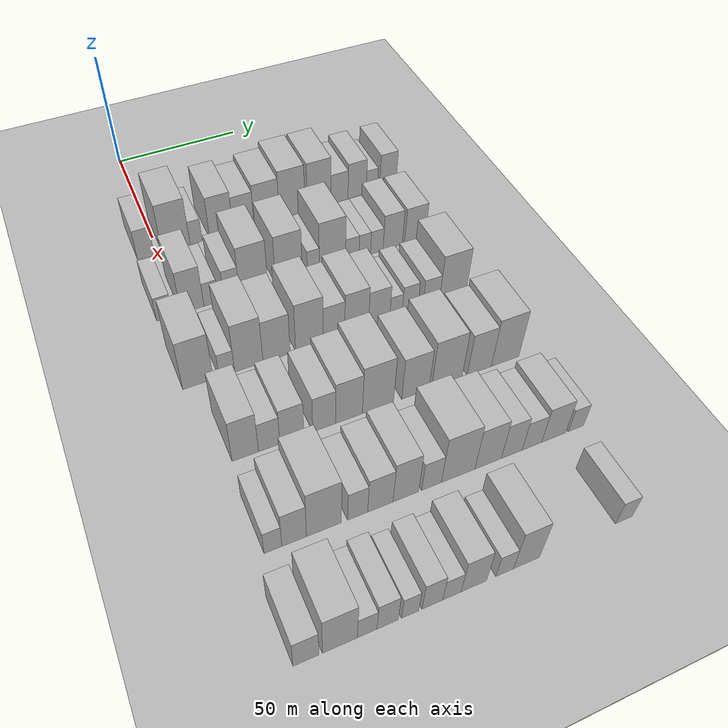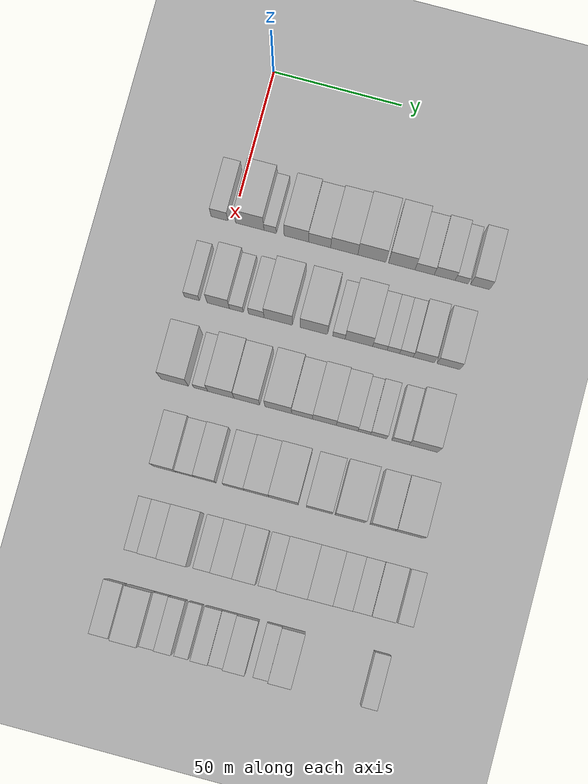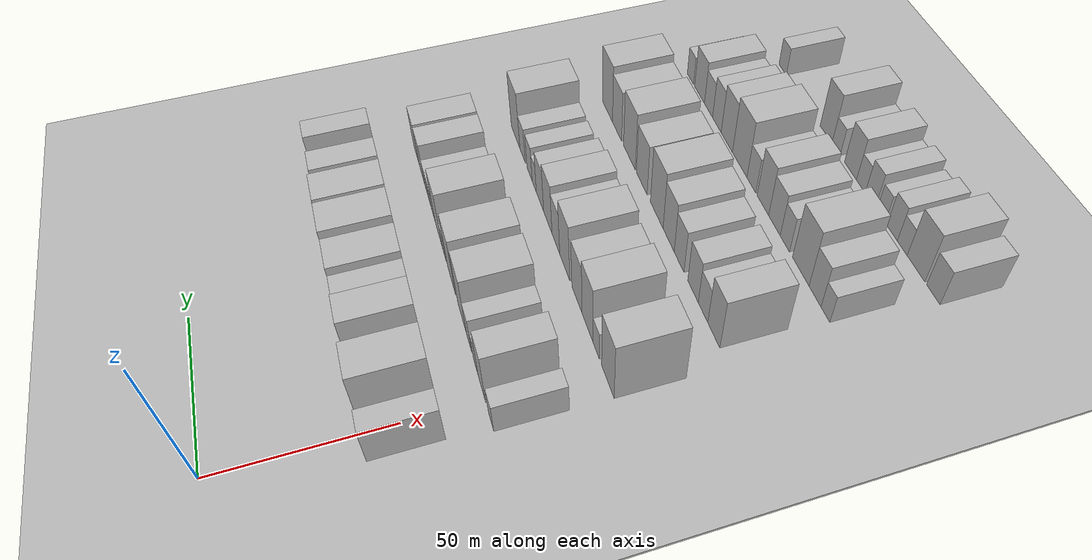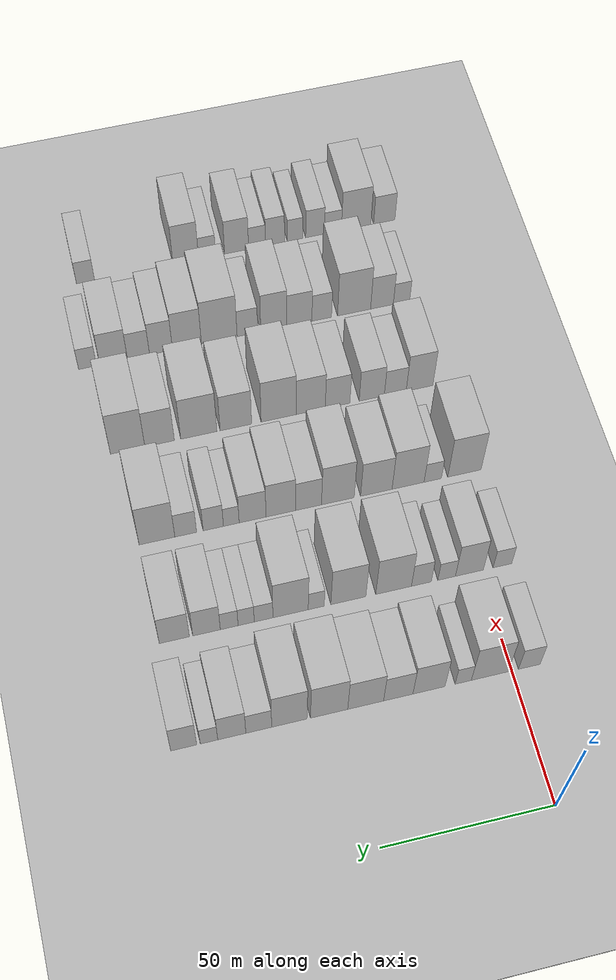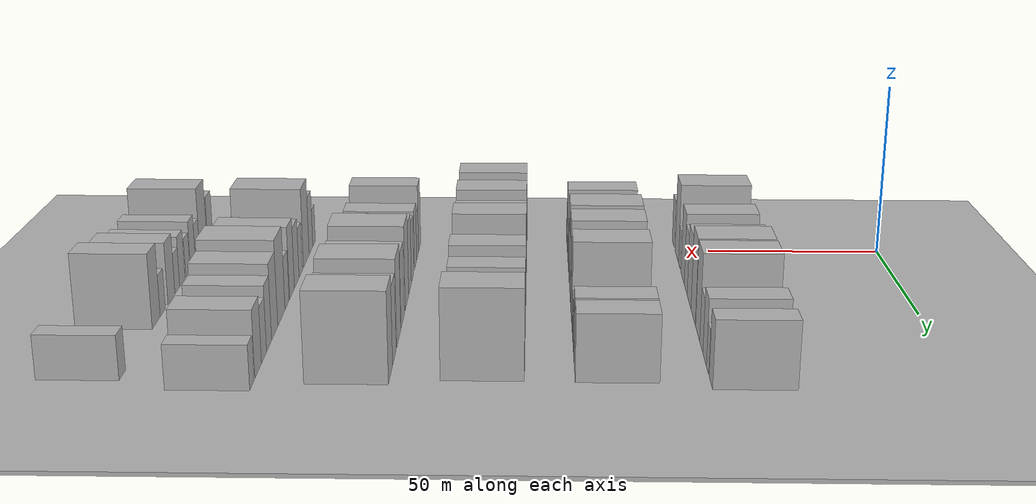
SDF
<sdf version="1.6">
 <world name="default">
  <include><name>ground_plane_1</name><uri>model://HANNAS_ground_plane</uri></include>
  <include>
   <name>ground_plane_2</name>
   <uri>model://HANNAS_ground_plane</uri>
   <pose>100 0 0  0 0 0</pose>
  </include>
  <model name="building_56">
   <static>1</static>
   <pose>50.0000 -4.9942 0 0.000000 0.000000 0.000000</pose>
   <link name="link">
    <pose>0 0 7.50 0 0 0</pose>
    <collision name="collision"><geometry><box><size>20.0000 6.4976 15.0000</size></box></geometry></collision>
    <visual name="visual">
     <cast_shadows>0</cast_shadows>
     <geometry><box><size>20.0000 6.4976 15.0000</size></box></geometry>
     <material>
      <script>
       <uri>model://HANNAS_wall/materials/scripts</uri>
       <uri>model://HANNAS_wall/materials/textures</uri>
       <name>vrc/HANNAS_wall</name>
      </script>
     </material>
    </visual>
   </link>
  </model>
  <model name="building_57">
   <static>1</static>
   <pose>50.0000 6.7767 0 0.000000 0.000000 0.000000</pose>
   <link name="link">
    <pose>0 0 12.00 0 0 0</pose>
    <collision name="collision"><geometry><box><size>20.0000 11.0440 24.0000</size></box></geometry></collision>
    <visual name="visual">
     <cast_shadows>0</cast_shadows>
     <geometry><box><size>20.0000 11.0440 24.0000</size></box></geometry>
     <material>
      <script>
       <uri>model://HANNAS_wall/materials/scripts</uri>
       <uri>model://HANNAS_wall/materials/textures</uri>
       <name>vrc/HANNAS_wall</name>
      </script>
     </material>
    </visual>
   </link>
  </model>
  <model name="building_58">
   <static>1</static>
   <pose>50.0000 14.7008 0 0.000000 0.000000 0.000000</pose>
   <link name="link">
    <pose>0 0 6.00 0 0 0</pose>
    <collision name="collision"><geometry><box><size>20.0000 4.8043 12.0000</size></box></geometry></collision>
    <visual name="visual">
     <cast_shadows>0</cast_shadows>
     <geometry><box><size>20.0000 4.8043 12.0000</size></box></geometry>
     <material>
      <script>
       <uri>model://HANNAS_wall/materials/scripts</uri>
       <uri>model://HANNAS_wall/materials/textures</uri>
       <name>vrc/HANNAS_wall</name>
      </script>
     </material>
    </visual>
   </link>
  </model>
  <model name="building_59">
   <static>1</static>
   <pose>50.0000 24.8382 0 0.000000 0.000000 0.000000</pose>
   <link name="link">
    <pose>0 0 10.50 0 0 0</pose>
    <collision name="collision"><geometry><box><size>20.0000 9.4705 21.0000</size></box></geometry></collision>
    <visual name="visual">
     <cast_shadows>0</cast_shadows>
     <geometry><box><size>20.0000 9.4705 21.0000</size></box></geometry>
     <material>
      <script>
       <uri>model://HANNAS_wall/materials/scripts</uri>
       <uri>model://HANNAS_wall/materials/textures</uri>
       <name>vrc/HANNAS_wall</name>
      </script>
     </material>
    </visual>
   </link>
  </model>
  <model name="building_60">
   <static>1</static>
   <pose>50.0000 33.8824 0 0.000000 0.000000 0.000000</pose>
   <link name="link">
    <pose>0 0 9.00 0 0 0</pose>
    <collision name="collision"><geometry><box><size>20.0000 8.6178 18.0000</size></box></geometry></collision>
    <visual name="visual">
     <cast_shadows>0</cast_shadows>
     <geometry><box><size>20.0000 8.6178 18.0000</size></box></geometry>
     <material>
      <script>
       <uri>model://HANNAS_wall/materials/scripts</uri>
       <uri>model://HANNAS_wall/materials/textures</uri>
       <name>vrc/HANNAS_wall</name>
      </script>
     </material>
    </visual>
   </link>
  </model>
  <model name="building_61">
   <static>1</static>
   <pose>50.0000 43.4396 0 0.000000 0.000000 0.000000</pose>
   <link name="link">
    <pose>0 0 10.50 0 0 0</pose>
    <collision name="collision"><geometry><box><size>20.0000 10.4966 21.0000</size></box></geometry></collision>
    <visual name="visual">
     <cast_shadows>0</cast_shadows>
     <geometry><box><size>20.0000 10.4966 21.0000</size></box></geometry>
     <material>
      <script>
       <uri>model://HANNAS_wall/materials/scripts</uri>
       <uri>model://HANNAS_wall/materials/textures</uri>
       <name>vrc/HANNAS_wall</name>
      </script>
     </material>
    </visual>
   </link>
  </model>
  <model name="building_62">
   <static>1</static>
   <pose>50.0000 54.1108 0 0.000000 0.000000 0.000000</pose>
   <link name="link">
    <pose>0 0 12.00 0 0 0</pose>
    <collision name="collision"><geometry><box><size>20.0000 10.8460 24.0000</size></box></geometry></collision>
    <visual name="visual">
     <cast_shadows>0</cast_shadows>
     <geometry><box><size>20.0000 10.8460 24.0000</size></box></geometry>
     <material>
      <script>
       <uri>model://HANNAS_wall/materials/scripts</uri>
       <uri>model://HANNAS_wall/materials/textures</uri>
       <name>vrc/HANNAS_wall</name>
      </script>
     </material>
    </visual>
   </link>
  </model>
  <model name="building_63">
   <static>1</static>
   <pose>50.0000 65.6435 0 0.000000 0.000000 0.000000</pose>
   <link name="link">
    <pose>0 0 12.00 0 0 0</pose>
    <collision name="collision"><geometry><box><size>20.0000 10.2193 24.0000</size></box></geometry></collision>
    <visual name="visual">
     <cast_shadows>0</cast_shadows>
     <geometry><box><size>20.0000 10.2193 24.0000</size></box></geometry>
     <material>
      <script>
       <uri>model://HANNAS_wall/materials/scripts</uri>
       <uri>model://HANNAS_wall/materials/textures</uri>
       <name>vrc/HANNAS_wall</name>
      </script>
     </material>
    </visual>
   </link>
  </model>
  <model name="building_64">
   <static>1</static>
   <pose>50.0000 74.4742 0 0.000000 0.000000 0.000000</pose>
   <link name="link">
    <pose>0 0 7.50 0 0 0</pose>
    <collision name="collision"><geometry><box><size>20.0000 7.4421 15.0000</size></box></geometry></collision>
    <visual name="visual">
     <cast_shadows>0</cast_shadows>
     <geometry><box><size>20.0000 7.4421 15.0000</size></box></geometry>
     <material>
      <script>
       <uri>model://HANNAS_wall/materials/scripts</uri>
       <uri>model://HANNAS_wall/materials/textures</uri>
       <name>vrc/HANNAS_wall</name>
      </script>
     </material>
    </visual>
   </link>
  </model>
  <model name="building_65">
   <static>1</static>
   <pose>50.0000 82.2153 0 0.000000 0.000000 0.000000</pose>
   <link name="link">
    <pose>0 0 9.00 0 0 0</pose>
    <collision name="collision"><geometry><box><size>20.0000 8.0402 18.0000</size></box></geometry></collision>
    <visual name="visual">
     <cast_shadows>0</cast_shadows>
     <geometry><box><size>20.0000 8.0402 18.0000</size></box></geometry>
     <material>
      <script>
       <uri>model://HANNAS_wall/materials/scripts</uri>
       <uri>model://HANNAS_wall/materials/textures</uri>
       <name>vrc/HANNAS_wall</name>
      </script>
     </material>
    </visual>
   </link>
  </model>
  <model name="building_66">
   <static>1</static>
   <pose>50.0000 88.7413 0 0.000000 0.000000 0.000000</pose>
   <link name="link">
    <pose>0 0 6.00 0 0 0</pose>
    <collision name="collision"><geometry><box><size>20.0000 5.0116 12.0000</size></box></geometry></collision>
    <visual name="visual">
     <cast_shadows>0</cast_shadows>
     <geometry><box><size>20.0000 5.0116 12.0000</size></box></geometry>
     <material>
      <script>
       <uri>model://HANNAS_wall/materials/scripts</uri>
       <uri>model://HANNAS_wall/materials/textures</uri>
       <name>vrc/HANNAS_wall</name>
      </script>
     </material>
    </visual>
   </link>
  </model>
  <model name="building_67">
   <static>1</static>
   <pose>50.0000 95.9590 0 0.000000 0.000000 0.000000</pose>
   <link name="link">
    <pose>0 0 9.00 0 0 0</pose>
    <collision name="collision"><geometry><box><size>20.0000 7.4239 18.0000</size></box></geometry></collision>
    <visual name="visual">
     <cast_shadows>0</cast_shadows>
     <geometry><box><size>20.0000 7.4239 18.0000</size></box></geometry>
     <material>
      <script>
       <uri>model://HANNAS_wall/materials/scripts</uri>
       <uri>model://HANNAS_wall/materials/textures</uri>
       <name>vrc/HANNAS_wall</name>
      </script>
     </material>
    </visual>
   </link>
  </model>
  <model name="building_175">
   <static>1</static>
   <pose>82.0000 -6.8992 0 0.000000 0.000000 0.000000</pose>
   <link name="link">
    <pose>0 0 6.00 0 0 0</pose>
    <collision name="collision"><geometry><box><size>20.0000 5.7596 12.0000</size></box></geometry></collision>
    <visual name="visual">
     <cast_shadows>0</cast_shadows>
     <geometry><box><size>20.0000 5.7596 12.0000</size></box></geometry>
     <material>
      <script>
       <uri>model://HANNAS_wall/materials/scripts</uri>
       <uri>model://HANNAS_wall/materials/textures</uri>
       <name>vrc/HANNAS_wall</name>
      </script>
     </material>
    </visual>
   </link>
  </model>
  <model name="building_176">
   <static>1</static>
   <pose>82.0000 3.2724 0 0.000000 0.000000 0.000000</pose>
   <link name="link">
    <pose>0 0 10.50 0 0 0</pose>
    <collision name="collision"><geometry><box><size>20.0000 8.5836 21.0000</size></box></geometry></collision>
    <visual name="visual">
     <cast_shadows>0</cast_shadows>
     <geometry><box><size>20.0000 8.5836 21.0000</size></box></geometry>
     <material>
      <script>
       <uri>model://HANNAS_wall/materials/scripts</uri>
       <uri>model://HANNAS_wall/materials/textures</uri>
       <name>vrc/HANNAS_wall</name>
      </script>
     </material>
    </visual>
   </link>
  </model>
  <model name="building_177">
   <static>1</static>
   <pose>82.0000 10.2506 0 0.000000 0.000000 0.000000</pose>
   <link name="link">
    <pose>0 0 6.00 0 0 0</pose>
    <collision name="collision"><geometry><box><size>20.0000 5.3727 12.0000</size></box></geometry></collision>
    <visual name="visual">
     <cast_shadows>0</cast_shadows>
     <geometry><box><size>20.0000 5.3727 12.0000</size></box></geometry>
     <material>
      <script>
       <uri>model://HANNAS_wall/materials/scripts</uri>
       <uri>model://HANNAS_wall/materials/textures</uri>
       <name>vrc/HANNAS_wall</name>
      </script>
     </material>
    </visual>
   </link>
  </model>
  <model name="building_178">
   <static>1</static>
   <pose>82.0000 17.9610 0 0.000000 0.000000 0.000000</pose>
   <link name="link">
    <pose>0 0 7.50 0 0 0</pose>
    <collision name="collision"><geometry><box><size>20.0000 6.0483 15.0000</size></box></geometry></collision>
    <visual name="visual">
     <cast_shadows>0</cast_shadows>
     <geometry><box><size>20.0000 6.0483 15.0000</size></box></geometry>
     <material>
      <script>
       <uri>model://HANNAS_wall/materials/scripts</uri>
       <uri>model://HANNAS_wall/materials/textures</uri>
       <name>vrc/HANNAS_wall</name>
      </script>
     </material>
    </visual>
   </link>
  </model>
  <model name="building_179">
   <static>1</static>
   <pose>82.0000 26.4039 0 0.000000 0.000000 0.000000</pose>
   <link name="link">
    <pose>0 0 12.00 0 0 0</pose>
    <collision name="collision"><geometry><box><size>20.0000 10.8374 24.0000</size></box></geometry></collision>
    <visual name="visual">
     <cast_shadows>0</cast_shadows>
     <geometry><box><size>20.0000 10.8374 24.0000</size></box></geometry>
     <material>
      <script>
       <uri>model://HANNAS_wall/materials/scripts</uri>
       <uri>model://HANNAS_wall/materials/textures</uri>
       <name>vrc/HANNAS_wall</name>
      </script>
     </material>
    </visual>
   </link>
  </model>
  <model name="building_180">
   <static>1</static>
   <pose>82.0000 40.1009 0 0.000000 0.000000 0.000000</pose>
   <link name="link">
    <pose>0 0 12.00 0 0 0</pose>
    <collision name="collision"><geometry><box><size>20.0000 10.5567 24.0000</size></box></geometry></collision>
    <visual name="visual">
     <cast_shadows>0</cast_shadows>
     <geometry><box><size>20.0000 10.5567 24.0000</size></box></geometry>
     <material>
      <script>
       <uri>model://HANNAS_wall/materials/scripts</uri>
       <uri>model://HANNAS_wall/materials/textures</uri>
       <name>vrc/HANNAS_wall</name>
      </script>
     </material>
    </visual>
   </link>
  </model>
  <model name="building_181">
   <static>1</static>
   <pose>82.0000 49.7860 0 0.000000 0.000000 0.000000</pose>
   <link name="link">
    <pose>0 0 6.00 0 0 0</pose>
    <collision name="collision"><geometry><box><size>20.0000 4.8135 12.0000</size></box></geometry></collision>
    <visual name="visual">
     <cast_shadows>0</cast_shadows>
     <geometry><box><size>20.0000 4.8135 12.0000</size></box></geometry>
     <material>
      <script>
       <uri>model://HANNAS_wall/materials/scripts</uri>
       <uri>model://HANNAS_wall/materials/textures</uri>
       <name>vrc/HANNAS_wall</name>
      </script>
     </material>
    </visual>
   </link>
  </model>
  <model name="building_182">
   <static>1</static>
   <pose>82.0000 57.4672 0 0.000000 0.000000 0.000000</pose>
   <link name="link">
    <pose>0 0 12.00 0 0 0</pose>
    <collision name="collision"><geometry><box><size>20.0000 10.5488 24.0000</size></box></geometry></collision>
    <visual name="visual">
     <cast_shadows>0</cast_shadows>
     <geometry><box><size>20.0000 10.5488 24.0000</size></box></geometry>
     <material>
      <script>
       <uri>model://HANNAS_wall/materials/scripts</uri>
       <uri>model://HANNAS_wall/materials/textures</uri>
       <name>vrc/HANNAS_wall</name>
      </script>
     </material>
    </visual>
   </link>
  </model>
  <model name="building_183">
   <static>1</static>
   <pose>82.0000 65.5215 0 0.000000 0.000000 0.000000</pose>
   <link name="link">
    <pose>0 0 6.00 0 0 0</pose>
    <collision name="collision"><geometry><box><size>20.0000 5.5597 12.0000</size></box></geometry></collision>
    <visual name="visual">
     <cast_shadows>0</cast_shadows>
     <geometry><box><size>20.0000 5.5597 12.0000</size></box></geometry>
     <material>
      <script>
       <uri>model://HANNAS_wall/materials/scripts</uri>
       <uri>model://HANNAS_wall/materials/textures</uri>
       <name>vrc/HANNAS_wall</name>
      </script>
     </material>
    </visual>
   </link>
  </model>
  <model name="building_184">
   <static>1</static>
   <pose>82.0000 70.7037 0 0.000000 0.000000 0.000000</pose>
   <link name="link">
    <pose>0 0 6.00 0 0 0</pose>
    <collision name="collision"><geometry><box><size>20.0000 4.8047 12.0000</size></box></geometry></collision>
    <visual name="visual">
     <cast_shadows>0</cast_shadows>
     <geometry><box><size>20.0000 4.8047 12.0000</size></box></geometry>
     <material>
      <script>
       <uri>model://HANNAS_wall/materials/scripts</uri>
       <uri>model://HANNAS_wall/materials/textures</uri>
       <name>vrc/HANNAS_wall</name>
      </script>
     </material>
    </visual>
   </link>
  </model>
  <model name="building_185">
   <static>1</static>
   <pose>82.0000 75.7393 0 0.000000 0.000000 0.000000</pose>
   <link name="link">
    <pose>0 0 6.00 0 0 0</pose>
    <collision name="collision"><geometry><box><size>20.0000 5.2666 12.0000</size></box></geometry></collision>
    <visual name="visual">
     <cast_shadows>0</cast_shadows>
     <geometry><box><size>20.0000 5.2666 12.0000</size></box></geometry>
     <material>
      <script>
       <uri>model://HANNAS_wall/materials/scripts</uri>
       <uri>model://HANNAS_wall/materials/textures</uri>
       <name>vrc/HANNAS_wall</name>
      </script>
     </material>
    </visual>
   </link>
  </model>
  <model name="building_186">
   <static>1</static>
   <pose>82.0000 82.4359 0 0.000000 0.000000 0.000000</pose>
   <link name="link">
    <pose>0 0 9.00 0 0 0</pose>
    <collision name="collision"><geometry><box><size>20.0000 8.1266 18.0000</size></box></geometry></collision>
    <visual name="visual">
     <cast_shadows>0</cast_shadows>
     <geometry><box><size>20.0000 8.1266 18.0000</size></box></geometry>
     <material>
      <script>
       <uri>model://HANNAS_wall/materials/scripts</uri>
       <uri>model://HANNAS_wall/materials/textures</uri>
       <name>vrc/HANNAS_wall</name>
      </script>
     </material>
    </visual>
   </link>
  </model>
  <model name="building_187">
   <static>1</static>
   <pose>82.0000 91.9347 0 0.000000 0.000000 0.000000</pose>
   <link name="link">
    <pose>0 0 9.00 0 0 0</pose>
    <collision name="collision"><geometry><box><size>20.0000 8.8712 18.0000</size></box></geometry></collision>
    <visual name="visual">
     <cast_shadows>0</cast_shadows>
     <geometry><box><size>20.0000 8.8712 18.0000</size></box></geometry>
     <material>
      <script>
       <uri>model://HANNAS_wall/materials/scripts</uri>
       <uri>model://HANNAS_wall/materials/textures</uri>
       <name>vrc/HANNAS_wall</name>
      </script>
     </material>
    </visual>
   </link>
  </model>
  <model name="building_299">
   <static>1</static>
   <pose>114.0000 -4.7491 0 0.000000 0.000000 0.000000</pose>
   <link name="link">
    <pose>0 0 12.00 0 0 0</pose>
    <collision name="collision"><geometry><box><size>20.0000 10.5481 24.0000</size></box></geometry></collision>
    <visual name="visual">
     <cast_shadows>0</cast_shadows>
     <geometry><box><size>20.0000 10.5481 24.0000</size></box></geometry>
     <material>
      <script>
       <uri>model://HANNAS_wall/materials/scripts</uri>
       <uri>model://HANNAS_wall/materials/textures</uri>
       <name>vrc/HANNAS_wall</name>
      </script>
     </material>
    </visual>
   </link>
  </model>
  <model name="building_300">
   <static>1</static>
   <pose>114.0000 5.2546 0 0.000000 0.000000 0.000000</pose>
   <link name="link">
    <pose>0 0 6.00 0 0 0</pose>
    <collision name="collision"><geometry><box><size>20.0000 5.4592 12.0000</size></box></geometry></collision>
    <visual name="visual">
     <cast_shadows>0</cast_shadows>
     <geometry><box><size>20.0000 5.4592 12.0000</size></box></geometry>
     <material>
      <script>
       <uri>model://HANNAS_wall/materials/scripts</uri>
       <uri>model://HANNAS_wall/materials/textures</uri>
       <name>vrc/HANNAS_wall</name>
      </script>
     </material>
    </visual>
   </link>
  </model>
  <model name="building_301">
   <static>1</static>
   <pose>114.0000 13.0209 0 0.000000 0.000000 0.000000</pose>
   <link name="link">
    <pose>0 0 12.00 0 0 0</pose>
    <collision name="collision"><geometry><box><size>20.0000 10.0733 24.0000</size></box></geometry></collision>
    <visual name="visual">
     <cast_shadows>0</cast_shadows>
     <geometry><box><size>20.0000 10.0733 24.0000</size></box></geometry>
     <material>
      <script>
       <uri>model://HANNAS_wall/materials/scripts</uri>
       <uri>model://HANNAS_wall/materials/textures</uri>
       <name>vrc/HANNAS_wall</name>
      </script>
     </material>
    </visual>
   </link>
  </model>
  <model name="building_302">
   <static>1</static>
   <pose>114.0000 22.9809 0 0.000000 0.000000 0.000000</pose>
   <link name="link">
    <pose>0 0 10.50 0 0 0</pose>
    <collision name="collision"><geometry><box><size>20.0000 9.8468 21.0000</size></box></geometry></collision>
    <visual name="visual">
     <cast_shadows>0</cast_shadows>
     <geometry><box><size>20.0000 9.8468 21.0000</size></box></geometry>
     <material>
      <script>
       <uri>model://HANNAS_wall/materials/scripts</uri>
       <uri>model://HANNAS_wall/materials/textures</uri>
       <name>vrc/HANNAS_wall</name>
      </script>
     </material>
    </visual>
   </link>
  </model>
  <model name="building_303">
   <static>1</static>
   <pose>114.0000 34.9953 0 0.000000 0.000000 0.000000</pose>
   <link name="link">
    <pose>0 0 12.00 0 0 0</pose>
    <collision name="collision"><geometry><box><size>20.0000 10.1818 24.0000</size></box></geometry></collision>
    <visual name="visual">
     <cast_shadows>0</cast_shadows>
     <geometry><box><size>20.0000 10.1818 24.0000</size></box></geometry>
     <material>
      <script>
       <uri>model://HANNAS_wall/materials/scripts</uri>
       <uri>model://HANNAS_wall/materials/textures</uri>
       <name>vrc/HANNAS_wall</name>
      </script>
     </material>
    </visual>
   </link>
  </model>
  <model name="building_304">
   <static>1</static>
   <pose>114.0000 44.1194 0 0.000000 0.000000 0.000000</pose>
   <link name="link">
    <pose>0 0 9.00 0 0 0</pose>
    <collision name="collision"><geometry><box><size>20.0000 8.0664 18.0000</size></box></geometry></collision>
    <visual name="visual">
     <cast_shadows>0</cast_shadows>
     <geometry><box><size>20.0000 8.0664 18.0000</size></box></geometry>
     <material>
      <script>
       <uri>model://HANNAS_wall/materials/scripts</uri>
       <uri>model://HANNAS_wall/materials/textures</uri>
       <name>vrc/HANNAS_wall</name>
      </script>
     </material>
    </visual>
   </link>
  </model>
  <model name="building_305">
   <static>1</static>
   <pose>114.0000 52.6841 0 0.000000 0.000000 0.000000</pose>
   <link name="link">
    <pose>0 0 10.50 0 0 0</pose>
    <collision name="collision"><geometry><box><size>20.0000 9.0631 21.0000</size></box></geometry></collision>
    <visual name="visual">
     <cast_shadows>0</cast_shadows>
     <geometry><box><size>20.0000 9.0631 21.0000</size></box></geometry>
     <material>
      <script>
       <uri>model://HANNAS_wall/materials/scripts</uri>
       <uri>model://HANNAS_wall/materials/textures</uri>
       <name>vrc/HANNAS_wall</name>
      </script>
     </material>
    </visual>
   </link>
  </model>
  <model name="building_306">
   <static>1</static>
   <pose>114.0000 61.3407 0 0.000000 0.000000 0.000000</pose>
   <link name="link">
    <pose>0 0 9.00 0 0 0</pose>
    <collision name="collision"><geometry><box><size>20.0000 8.2499 18.0000</size></box></geometry></collision>
    <visual name="visual">
     <cast_shadows>0</cast_shadows>
     <geometry><box><size>20.0000 8.2499 18.0000</size></box></geometry>
     <material>
      <script>
       <uri>model://HANNAS_wall/materials/scripts</uri>
       <uri>model://HANNAS_wall/materials/textures</uri>
       <name>vrc/HANNAS_wall</name>
      </script>
     </material>
    </visual>
   </link>
  </model>
  <model name="building_307">
   <static>1</static>
   <pose>114.0000 67.8756 0 0.000000 0.000000 0.000000</pose>
   <link name="link">
    <pose>0 0 6.00 0 0 0</pose>
    <collision name="collision"><geometry><box><size>20.0000 4.8198 12.0000</size></box></geometry></collision>
    <visual name="visual">
     <cast_shadows>0</cast_shadows>
     <geometry><box><size>20.0000 4.8198 12.0000</size></box></geometry>
     <material>
      <script>
       <uri>model://HANNAS_wall/materials/scripts</uri>
       <uri>model://HANNAS_wall/materials/textures</uri>
       <name>vrc/HANNAS_wall</name>
      </script>
     </material>
    </visual>
   </link>
  </model>
  <model name="building_308">
   <static>1</static>
   <pose>114.0000 73.3796 0 0.000000 0.000000 0.000000</pose>
   <link name="link">
    <pose>0 0 7.50 0 0 0</pose>
    <collision name="collision"><geometry><box><size>20.0000 6.1884 15.0000</size></box></geometry></collision>
    <visual name="visual">
     <cast_shadows>0</cast_shadows>
     <geometry><box><size>20.0000 6.1884 15.0000</size></box></geometry>
     <material>
      <script>
       <uri>model://HANNAS_wall/materials/scripts</uri>
       <uri>model://HANNAS_wall/materials/textures</uri>
       <name>vrc/HANNAS_wall</name>
      </script>
     </material>
    </visual>
   </link>
  </model>
  <model name="building_309">
   <static>1</static>
   <pose>114.0000 81.7809 0 0.000000 0.000000 0.000000</pose>
   <link name="link">
    <pose>0 0 7.50 0 0 0</pose>
    <collision name="collision"><geometry><box><size>20.0000 6.6142 15.0000</size></box></geometry></collision>
    <visual name="visual">
     <cast_shadows>0</cast_shadows>
     <geometry><box><size>20.0000 6.6142 15.0000</size></box></geometry>
     <material>
      <script>
       <uri>model://HANNAS_wall/materials/scripts</uri>
       <uri>model://HANNAS_wall/materials/textures</uri>
       <name>vrc/HANNAS_wall</name>
      </script>
     </material>
    </visual>
   </link>
  </model>
  <model name="building_310">
   <static>1</static>
   <pose>114.0000 90.5142 0 0.000000 0.000000 0.000000</pose>
   <link name="link">
    <pose>0 0 12.00 0 0 0</pose>
    <collision name="collision"><geometry><box><size>20.0000 10.8525 24.0000</size></box></geometry></collision>
    <visual name="visual">
     <cast_shadows>0</cast_shadows>
     <geometry><box><size>20.0000 10.8525 24.0000</size></box></geometry>
     <material>
      <script>
       <uri>model://HANNAS_wall/materials/scripts</uri>
       <uri>model://HANNAS_wall/materials/textures</uri>
       <name>vrc/HANNAS_wall</name>
      </script>
     </material>
    </visual>
   </link>
  </model>
  <model name="building_420">
   <static>1</static>
   <pose>146.0000 0.3335 0 0.000000 0.000000 0.000000</pose>
   <link name="link">
    <pose>0 0 10.50 0 0 0</pose>
    <collision name="collision"><geometry><box><size>20.0000 8.6742 21.0000</size></box></geometry></collision>
    <visual name="visual">
     <cast_shadows>0</cast_shadows>
     <geometry><box><size>20.0000 8.6742 21.0000</size></box></geometry>
     <material>
      <script>
       <uri>model://HANNAS_wall/materials/scripts</uri>
       <uri>model://HANNAS_wall/materials/textures</uri>
       <name>vrc/HANNAS_wall</name>
      </script>
     </material>
    </visual>
   </link>
  </model>
  <model name="building_421">
   <static>1</static>
   <pose>146.0000 8.2102 0 0.000000 0.000000 0.000000</pose>
   <link name="link">
    <pose>0 0 7.50 0 0 0</pose>
    <collision name="collision"><geometry><box><size>20.0000 7.0793 15.0000</size></box></geometry></collision>
    <visual name="visual">
     <cast_shadows>0</cast_shadows>
     <geometry><box><size>20.0000 7.0793 15.0000</size></box></geometry>
     <material>
      <script>
       <uri>model://HANNAS_wall/materials/scripts</uri>
       <uri>model://HANNAS_wall/materials/textures</uri>
       <name>vrc/HANNAS_wall</name>
      </script>
     </material>
    </visual>
   </link>
  </model>
  <model name="building_422">
   <static>1</static>
   <pose>146.0000 15.7952 0 0.000000 0.000000 0.000000</pose>
   <link name="link">
    <pose>0 0 9.00 0 0 0</pose>
    <collision name="collision"><geometry><box><size>20.0000 8.0907 18.0000</size></box></geometry></collision>
    <visual name="visual">
     <cast_shadows>0</cast_shadows>
     <geometry><box><size>20.0000 8.0907 18.0000</size></box></geometry>
     <material>
      <script>
       <uri>model://HANNAS_wall/materials/scripts</uri>
       <uri>model://HANNAS_wall/materials/textures</uri>
       <name>vrc/HANNAS_wall</name>
      </script>
     </material>
    </visual>
   </link>
  </model>
  <model name="building_423">
   <static>1</static>
   <pose>146.0000 26.7970 0 0.000000 0.000000 0.000000</pose>
   <link name="link">
    <pose>0 0 9.00 0 0 0</pose>
    <collision name="collision"><geometry><box><size>20.0000 7.9129 18.0000</size></box></geometry></collision>
    <visual name="visual">
     <cast_shadows>0</cast_shadows>
     <geometry><box><size>20.0000 7.9129 18.0000</size></box></geometry>
     <material>
      <script>
       <uri>model://HANNAS_wall/materials/scripts</uri>
       <uri>model://HANNAS_wall/materials/textures</uri>
       <name>vrc/HANNAS_wall</name>
      </script>
     </material>
    </visual>
   </link>
  </model>
  <model name="building_424">
   <static>1</static>
   <pose>146.0000 35.4198 0 0.000000 0.000000 0.000000</pose>
   <link name="link">
    <pose>0 0 10.50 0 0 0</pose>
    <collision name="collision"><geometry><box><size>20.0000 9.3326 21.0000</size></box></geometry></collision>
    <visual name="visual">
     <cast_shadows>0</cast_shadows>
     <geometry><box><size>20.0000 9.3326 21.0000</size></box></geometry>
     <material>
      <script>
       <uri>model://HANNAS_wall/materials/scripts</uri>
       <uri>model://HANNAS_wall/materials/textures</uri>
       <name>vrc/HANNAS_wall</name>
      </script>
     </material>
    </visual>
   </link>
  </model>
  <model name="building_425">
   <static>1</static>
   <pose>146.0000 45.6388 0 0.000000 0.000000 0.000000</pose>
   <link name="link">
    <pose>0 0 12.00 0 0 0</pose>
    <collision name="collision"><geometry><box><size>20.0000 11.1054 24.0000</size></box></geometry></collision>
    <visual name="visual">
     <cast_shadows>0</cast_shadows>
     <geometry><box><size>20.0000 11.1054 24.0000</size></box></geometry>
     <material>
      <script>
       <uri>model://HANNAS_wall/materials/scripts</uri>
       <uri>model://HANNAS_wall/materials/textures</uri>
       <name>vrc/HANNAS_wall</name>
      </script>
     </material>
    </visual>
   </link>
  </model>
  <model name="building_426">
   <static>1</static>
   <pose>146.0000 59.1746 0 0.000000 0.000000 0.000000</pose>
   <link name="link">
    <pose>0 0 10.50 0 0 0</pose>
    <collision name="collision"><geometry><box><size>20.0000 9.9661 21.0000</size></box></geometry></collision>
    <visual name="visual">
     <cast_shadows>0</cast_shadows>
     <geometry><box><size>20.0000 9.9661 21.0000</size></box></geometry>
     <material>
      <script>
       <uri>model://HANNAS_wall/materials/scripts</uri>
       <uri>model://HANNAS_wall/materials/textures</uri>
       <name>vrc/HANNAS_wall</name>
      </script>
     </material>
    </visual>
   </link>
  </model>
  <model name="building_427">
   <static>1</static>
   <pose>146.0000 70.8551 0 0.000000 0.000000 0.000000</pose>
   <link name="link">
    <pose>0 0 12.00 0 0 0</pose>
    <collision name="collision"><geometry><box><size>20.0000 11.3949 24.0000</size></box></geometry></collision>
    <visual name="visual">
     <cast_shadows>0</cast_shadows>
     <geometry><box><size>20.0000 11.3949 24.0000</size></box></geometry>
     <material>
      <script>
       <uri>model://HANNAS_wall/materials/scripts</uri>
       <uri>model://HANNAS_wall/materials/textures</uri>
       <name>vrc/HANNAS_wall</name>
      </script>
     </material>
    </visual>
   </link>
  </model>
  <model name="building_428">
   <static>1</static>
   <pose>146.0000 83.1694 0 0.000000 0.000000 0.000000</pose>
   <link name="link">
    <pose>0 0 10.50 0 0 0</pose>
    <collision name="collision"><geometry><box><size>20.0000 9.2336 21.0000</size></box></geometry></collision>
    <visual name="visual">
     <cast_shadows>0</cast_shadows>
     <geometry><box><size>20.0000 9.2336 21.0000</size></box></geometry>
     <material>
      <script>
       <uri>model://HANNAS_wall/materials/scripts</uri>
       <uri>model://HANNAS_wall/materials/textures</uri>
       <name>vrc/HANNAS_wall</name>
      </script>
     </material>
    </visual>
   </link>
  </model>
  <model name="building_429">
   <static>1</static>
   <pose>146.0000 93.1551 0 0.000000 0.000000 0.000000</pose>
   <link name="link">
    <pose>0 0 12.00 0 0 0</pose>
    <collision name="collision"><geometry><box><size>20.0000 10.7378 24.0000</size></box></geometry></collision>
    <visual name="visual">
     <cast_shadows>0</cast_shadows>
     <geometry><box><size>20.0000 10.7378 24.0000</size></box></geometry>
     <material>
      <script>
       <uri>model://HANNAS_wall/materials/scripts</uri>
       <uri>model://HANNAS_wall/materials/textures</uri>
       <name>vrc/HANNAS_wall</name>
      </script>
     </material>
    </visual>
   </link>
  </model>
  <model name="building_538">
   <static>1</static>
   <pose>178.0000 -2.7399 0 0.000000 0.000000 0.000000</pose>
   <link name="link">
    <pose>0 0 6.00 0 0 0</pose>
    <collision name="collision"><geometry><box><size>20.0000 5.4366 12.0000</size></box></geometry></collision>
    <visual name="visual">
     <cast_shadows>0</cast_shadows>
     <geometry><box><size>20.0000 5.4366 12.0000</size></box></geometry>
     <material>
      <script>
       <uri>model://HANNAS_wall/materials/scripts</uri>
       <uri>model://HANNAS_wall/materials/textures</uri>
       <name>vrc/HANNAS_wall</name>
      </script>
     </material>
    </visual>
   </link>
  </model>
  <model name="building_539">
   <static>1</static>
   <pose>178.0000 3.7707 0 0.000000 0.000000 0.000000</pose>
   <link name="link">
    <pose>0 0 9.00 0 0 0</pose>
    <collision name="collision"><geometry><box><size>20.0000 7.5845 18.0000</size></box></geometry></collision>
    <visual name="visual">
     <cast_shadows>0</cast_shadows>
     <geometry><box><size>20.0000 7.5845 18.0000</size></box></geometry>
     <material>
      <script>
       <uri>model://HANNAS_wall/materials/scripts</uri>
       <uri>model://HANNAS_wall/materials/textures</uri>
       <name>vrc/HANNAS_wall</name>
      </script>
     </material>
    </visual>
   </link>
  </model>
  <model name="building_540">
   <static>1</static>
   <pose>178.0000 13.0362 0 0.000000 0.000000 0.000000</pose>
   <link name="link">
    <pose>0 0 12.00 0 0 0</pose>
    <collision name="collision"><geometry><box><size>20.0000 10.9465 24.0000</size></box></geometry></collision>
    <visual name="visual">
     <cast_shadows>0</cast_shadows>
     <geometry><box><size>20.0000 10.9465 24.0000</size></box></geometry>
     <material>
      <script>
       <uri>model://HANNAS_wall/materials/scripts</uri>
       <uri>model://HANNAS_wall/materials/textures</uri>
       <name>vrc/HANNAS_wall</name>
      </script>
     </material>
    </visual>
   </link>
  </model>
  <model name="building_541">
   <static>1</static>
   <pose>178.0000 23.7487 0 0.000000 0.000000 0.000000</pose>
   <link name="link">
    <pose>0 0 7.50 0 0 0</pose>
    <collision name="collision"><geometry><box><size>20.0000 6.4786 15.0000</size></box></geometry></collision>
    <visual name="visual">
     <cast_shadows>0</cast_shadows>
     <geometry><box><size>20.0000 6.4786 15.0000</size></box></geometry>
     <material>
      <script>
       <uri>model://HANNAS_wall/materials/scripts</uri>
       <uri>model://HANNAS_wall/materials/textures</uri>
       <name>vrc/HANNAS_wall</name>
      </script>
     </material>
    </visual>
   </link>
  </model>
  <model name="building_542">
   <static>1</static>
   <pose>178.0000 31.1163 0 0.000000 0.000000 0.000000</pose>
   <link name="link">
    <pose>0 0 9.00 0 0 0</pose>
    <collision name="collision"><geometry><box><size>20.0000 8.2565 18.0000</size></box></geometry></collision>
    <visual name="visual">
     <cast_shadows>0</cast_shadows>
     <geometry><box><size>20.0000 8.2565 18.0000</size></box></geometry>
     <material>
      <script>
       <uri>model://HANNAS_wall/materials/scripts</uri>
       <uri>model://HANNAS_wall/materials/textures</uri>
       <name>vrc/HANNAS_wall</name>
      </script>
     </material>
    </visual>
   </link>
  </model>
  <model name="building_543">
   <static>1</static>
   <pose>178.0000 39.5132 0 0.000000 0.000000 0.000000</pose>
   <link name="link">
    <pose>0 0 10.50 0 0 0</pose>
    <collision name="collision"><geometry><box><size>20.0000 8.5375 21.0000</size></box></geometry></collision>
    <visual name="visual">
     <cast_shadows>0</cast_shadows>
     <geometry><box><size>20.0000 8.5375 21.0000</size></box></geometry>
     <material>
      <script>
       <uri>model://HANNAS_wall/materials/scripts</uri>
       <uri>model://HANNAS_wall/materials/textures</uri>
       <name>vrc/HANNAS_wall</name>
      </script>
     </material>
    </visual>
   </link>
  </model>
  <model name="building_544">
   <static>1</static>
   <pose>178.0000 48.1429 0 0.000000 0.000000 0.000000</pose>
   <link name="link">
    <pose>0 0 7.50 0 0 0</pose>
    <collision name="collision"><geometry><box><size>20.0000 6.7219 15.0000</size></box></geometry></collision>
    <visual name="visual">
     <cast_shadows>0</cast_shadows>
     <geometry><box><size>20.0000 6.7219 15.0000</size></box></geometry>
     <material>
      <script>
       <uri>model://HANNAS_wall/materials/scripts</uri>
       <uri>model://HANNAS_wall/materials/textures</uri>
       <name>vrc/HANNAS_wall</name>
      </script>
     </material>
    </visual>
   </link>
  </model>
  <model name="building_545">
   <static>1</static>
   <pose>178.0000 57.2928 0 0.000000 0.000000 0.000000</pose>
   <link name="link">
    <pose>0 0 12.00 0 0 0</pose>
    <collision name="collision"><geometry><box><size>20.0000 11.5779 24.0000</size></box></geometry></collision>
    <visual name="visual">
     <cast_shadows>0</cast_shadows>
     <geometry><box><size>20.0000 11.5779 24.0000</size></box></geometry>
     <material>
      <script>
       <uri>model://HANNAS_wall/materials/scripts</uri>
       <uri>model://HANNAS_wall/materials/textures</uri>
       <name>vrc/HANNAS_wall</name>
      </script>
     </material>
    </visual>
   </link>
  </model>
  <model name="building_546">
   <static>1</static>
   <pose>178.0000 67.7612 0 0.000000 0.000000 0.000000</pose>
   <link name="link">
    <pose>0 0 10.50 0 0 0</pose>
    <collision name="collision"><geometry><box><size>20.0000 9.3589 21.0000</size></box></geometry></collision>
    <visual name="visual">
     <cast_shadows>0</cast_shadows>
     <geometry><box><size>20.0000 9.3589 21.0000</size></box></geometry>
     <material>
      <script>
       <uri>model://HANNAS_wall/materials/scripts</uri>
       <uri>model://HANNAS_wall/materials/textures</uri>
       <name>vrc/HANNAS_wall</name>
      </script>
     </material>
    </visual>
   </link>
  </model>
  <model name="building_547">
   <static>1</static>
   <pose>178.0000 76.1500 0 0.000000 0.000000 0.000000</pose>
   <link name="link">
    <pose>0 0 9.00 0 0 0</pose>
    <collision name="collision"><geometry><box><size>20.0000 7.4187 18.0000</size></box></geometry></collision>
    <visual name="visual">
     <cast_shadows>0</cast_shadows>
     <geometry><box><size>20.0000 7.4187 18.0000</size></box></geometry>
     <material>
      <script>
       <uri>model://HANNAS_wall/materials/scripts</uri>
       <uri>model://HANNAS_wall/materials/textures</uri>
       <name>vrc/HANNAS_wall</name>
      </script>
     </material>
    </visual>
   </link>
  </model>
  <model name="building_548">
   <static>1</static>
   <pose>178.0000 83.4168 0 0.000000 0.000000 0.000000</pose>
   <link name="link">
    <pose>0 0 7.50 0 0 0</pose>
    <collision name="collision"><geometry><box><size>20.0000 7.1150 15.0000</size></box></geometry></collision>
    <visual name="visual">
     <cast_shadows>0</cast_shadows>
     <geometry><box><size>20.0000 7.1150 15.0000</size></box></geometry>
     <material>
      <script>
       <uri>model://HANNAS_wall/materials/scripts</uri>
       <uri>model://HANNAS_wall/materials/textures</uri>
       <name>vrc/HANNAS_wall</name>
      </script>
     </material>
    </visual>
   </link>
  </model>
  <model name="building_549">
   <static>1</static>
   <pose>178.0000 91.4180 0 0.000000 0.000000 0.000000</pose>
   <link name="link">
    <pose>0 0 9.00 0 0 0</pose>
    <collision name="collision"><geometry><box><size>20.0000 8.8872 18.0000</size></box></geometry></collision>
    <visual name="visual">
     <cast_shadows>0</cast_shadows>
     <geometry><box><size>20.0000 8.8872 18.0000</size></box></geometry>
     <material>
      <script>
       <uri>model://HANNAS_wall/materials/scripts</uri>
       <uri>model://HANNAS_wall/materials/textures</uri>
       <name>vrc/HANNAS_wall</name>
      </script>
     </material>
    </visual>
   </link>
  </model>
  <model name="building_550">
   <static>1</static>
   <pose>178.0000 99.7503 0 0.000000 0.000000 0.000000</pose>
   <link name="link">
    <pose>0 0 6.00 0 0 0</pose>
    <collision name="collision"><geometry><box><size>20.0000 5.7775 12.0000</size></box></geometry></collision>
    <visual name="visual">
     <cast_shadows>0</cast_shadows>
     <geometry><box><size>20.0000 5.7775 12.0000</size></box></geometry>
     <material>
      <script>
       <uri>model://HANNAS_wall/materials/scripts</uri>
       <uri>model://HANNAS_wall/materials/textures</uri>
       <name>vrc/HANNAS_wall</name>
      </script>
     </material>
    </visual>
   </link>
  </model>
  <model name="building_656">
   <static>1</static>
   <pose>210.0000 -5.7480 0 0.000000 0.000000 0.000000</pose>
   <link name="link">
    <pose>0 0 7.50 0 0 0</pose>
    <collision name="collision"><geometry><box><size>20.0000 7.2840 15.0000</size></box></geometry></collision>
    <visual name="visual">
     <cast_shadows>0</cast_shadows>
     <geometry><box><size>20.0000 7.2840 15.0000</size></box></geometry>
     <material>
      <script>
       <uri>model://HANNAS_wall/materials/scripts</uri>
       <uri>model://HANNAS_wall/materials/textures</uri>
       <name>vrc/HANNAS_wall</name>
      </script>
     </material>
    </visual>
   </link>
  </model>
  <model name="building_657">
   <static>1</static>
   <pose>210.0000 3.9152 0 0.000000 0.000000 0.000000</pose>
   <link name="link">
    <pose>0 0 10.50 0 0 0</pose>
    <collision name="collision"><geometry><box><size>20.0000 10.0424 21.0000</size></box></geometry></collision>
    <visual name="visual">
     <cast_shadows>0</cast_shadows>
     <geometry><box><size>20.0000 10.0424 21.0000</size></box></geometry>
     <material>
      <script>
       <uri>model://HANNAS_wall/materials/scripts</uri>
       <uri>model://HANNAS_wall/materials/textures</uri>
       <name>vrc/HANNAS_wall</name>
      </script>
     </material>
    </visual>
   </link>
  </model>
  <model name="building_658">
   <static>1</static>
   <pose>210.0000 11.8265 0 0.000000 0.000000 0.000000</pose>
   <link name="link">
    <pose>0 0 6.00 0 0 0</pose>
    <collision name="collision"><geometry><box><size>20.0000 5.7802 12.0000</size></box></geometry></collision>
    <visual name="visual">
     <cast_shadows>0</cast_shadows>
     <geometry><box><size>20.0000 5.7802 12.0000</size></box></geometry>
     <material>
      <script>
       <uri>model://HANNAS_wall/materials/scripts</uri>
       <uri>model://HANNAS_wall/materials/textures</uri>
       <name>vrc/HANNAS_wall</name>
      </script>
     </material>
    </visual>
   </link>
  </model>
  <model name="building_659">
   <static>1</static>
   <pose>210.0000 17.8906 0 0.000000 0.000000 0.000000</pose>
   <link name="link">
    <pose>0 0 7.50 0 0 0</pose>
    <collision name="collision"><geometry><box><size>20.0000 6.3481 15.0000</size></box></geometry></collision>
    <visual name="visual">
     <cast_shadows>0</cast_shadows>
     <geometry><box><size>20.0000 6.3481 15.0000</size></box></geometry>
     <material>
      <script>
       <uri>model://HANNAS_wall/materials/scripts</uri>
       <uri>model://HANNAS_wall/materials/textures</uri>
       <name>vrc/HANNAS_wall</name>
      </script>
     </material>
    </visual>
   </link>
  </model>
  <model name="building_660">
   <static>1</static>
   <pose>210.0000 24.6623 0 0.000000 0.000000 0.000000</pose>
   <link name="link">
    <pose>0 0 6.00 0 0 0</pose>
    <collision name="collision"><geometry><box><size>20.0000 5.1953 12.0000</size></box></geometry></collision>
    <visual name="visual">
     <cast_shadows>0</cast_shadows>
     <geometry><box><size>20.0000 5.1953 12.0000</size></box></geometry>
     <material>
      <script>
       <uri>model://HANNAS_wall/materials/scripts</uri>
       <uri>model://HANNAS_wall/materials/textures</uri>
       <name>vrc/HANNAS_wall</name>
      </script>
     </material>
    </visual>
   </link>
  </model>
  <model name="building_661">
   <static>1</static>
   <pose>210.0000 31.4653 0 0.000000 0.000000 0.000000</pose>
   <link name="link">
    <pose>0 0 7.50 0 0 0</pose>
    <collision name="collision"><geometry><box><size>20.0000 6.4106 15.0000</size></box></geometry></collision>
    <visual name="visual">
     <cast_shadows>0</cast_shadows>
     <geometry><box><size>20.0000 6.4106 15.0000</size></box></geometry>
     <material>
      <script>
       <uri>model://HANNAS_wall/materials/scripts</uri>
       <uri>model://HANNAS_wall/materials/textures</uri>
       <name>vrc/HANNAS_wall</name>
      </script>
     </material>
    </visual>
   </link>
  </model>
  <model name="building_662">
   <static>1</static>
   <pose>210.0000 37.5093 0 0.000000 0.000000 0.000000</pose>
   <link name="link">
    <pose>0 0 6.00 0 0 0</pose>
    <collision name="collision"><geometry><box><size>20.0000 5.6775 12.0000</size></box></geometry></collision>
    <visual name="visual">
     <cast_shadows>0</cast_shadows>
     <geometry><box><size>20.0000 5.6775 12.0000</size></box></geometry>
     <material>
      <script>
       <uri>model://HANNAS_wall/materials/scripts</uri>
       <uri>model://HANNAS_wall/materials/textures</uri>
       <name>vrc/HANNAS_wall</name>
      </script>
     </material>
    </visual>
   </link>
  </model>
  <model name="building_663">
   <static>1</static>
   <pose>210.0000 44.3746 0 0.000000 0.000000 0.000000</pose>
   <link name="link">
    <pose>0 0 9.00 0 0 0</pose>
    <collision name="collision"><geometry><box><size>20.0000 8.0531 18.0000</size></box></geometry></collision>
    <visual name="visual">
     <cast_shadows>0</cast_shadows>
     <geometry><box><size>20.0000 8.0531 18.0000</size></box></geometry>
     <material>
      <script>
       <uri>model://HANNAS_wall/materials/scripts</uri>
       <uri>model://HANNAS_wall/materials/textures</uri>
       <name>vrc/HANNAS_wall</name>
      </script>
     </material>
    </visual>
   </link>
  </model>
  <model name="building_664">
   <static>1</static>
   <pose>210.0000 54.2483 0 0.000000 0.000000 0.000000</pose>
   <link name="link">
    <pose>0 0 6.00 0 0 0</pose>
    <collision name="collision"><geometry><box><size>20.0000 5.6943 12.0000</size></box></geometry></collision>
    <visual name="visual">
     <cast_shadows>0</cast_shadows>
     <geometry><box><size>20.0000 5.6943 12.0000</size></box></geometry>
     <material>
      <script>
       <uri>model://HANNAS_wall/materials/scripts</uri>
       <uri>model://HANNAS_wall/materials/textures</uri>
       <name>vrc/HANNAS_wall</name>
      </script>
     </material>
    </visual>
   </link>
  </model>
  <model name="building_665">
   <static>1</static>
   <pose>210.0000 61.3656 0 0.000000 0.000000 0.000000</pose>
   <link name="link">
    <pose>0 0 10.50 0 0 0</pose>
    <collision name="collision"><geometry><box><size>20.0000 8.5403 21.0000</size></box></geometry></collision>
    <visual name="visual">
     <cast_shadows>0</cast_shadows>
     <geometry><box><size>20.0000 8.5403 21.0000</size></box></geometry>
     <material>
      <script>
       <uri>model://HANNAS_wall/materials/scripts</uri>
       <uri>model://HANNAS_wall/materials/textures</uri>
       <name>vrc/HANNAS_wall</name>
      </script>
     </material>
    </visual>
   </link>
  </model>
  <model name="building_666">
   <static>1</static>
   <pose>210.0000 94.5815 0 0.000000 0.000000 0.000000</pose>
   <link name="link">
    <pose>0 0 6.00 0 0 0</pose>
    <collision name="collision"><geometry><box><size>20.0000 5.9638 12.0000</size></box></geometry></collision>
    <visual name="visual">
     <cast_shadows>0</cast_shadows>
     <geometry><box><size>20.0000 5.9638 12.0000</size></box></geometry>
     <material>
      <script>
       <uri>model://HANNAS_wall/materials/scripts</uri>
       <uri>model://HANNAS_wall/materials/textures</uri>
       <name>vrc/HANNAS_wall</name>
      </script>
     </material>
    </visual>
   </link>
  </model>
 </world>
</sdf>
